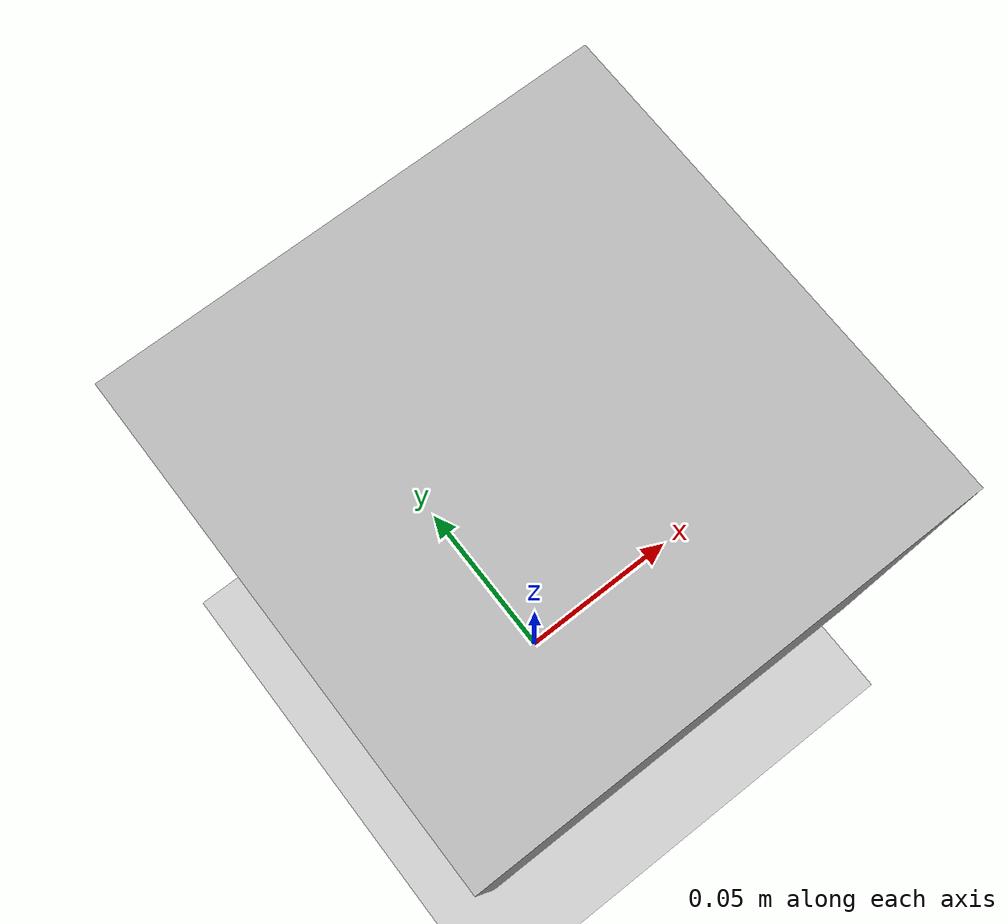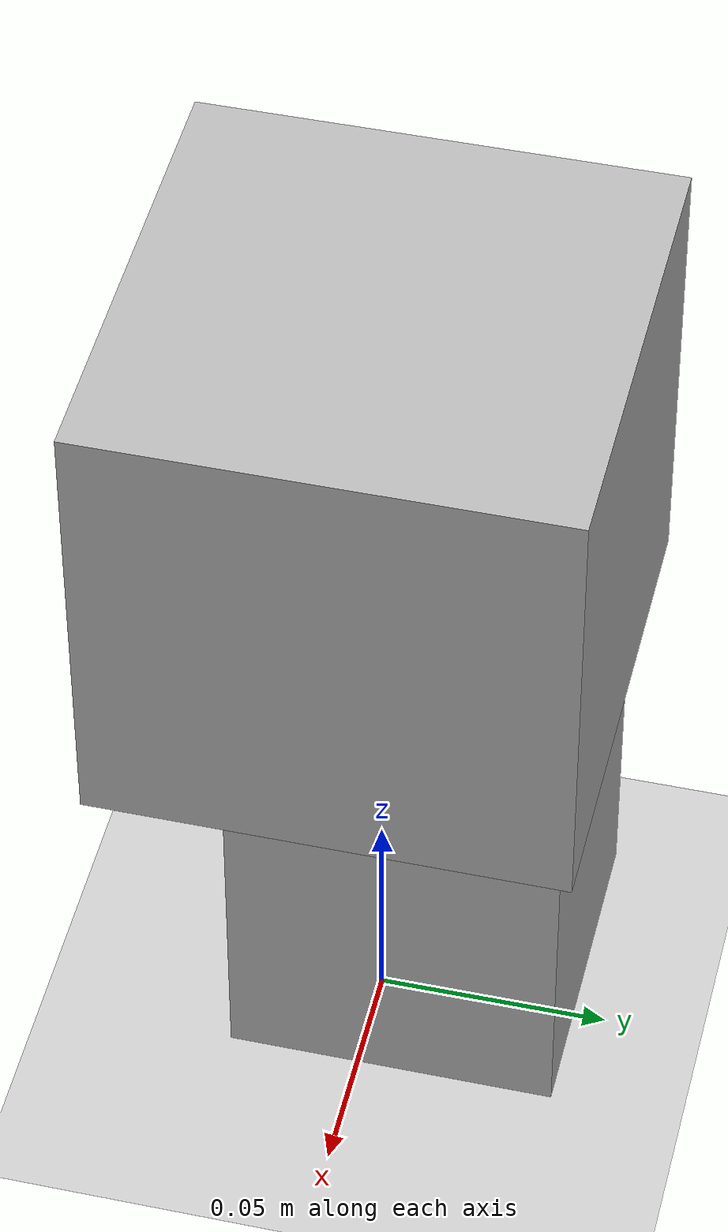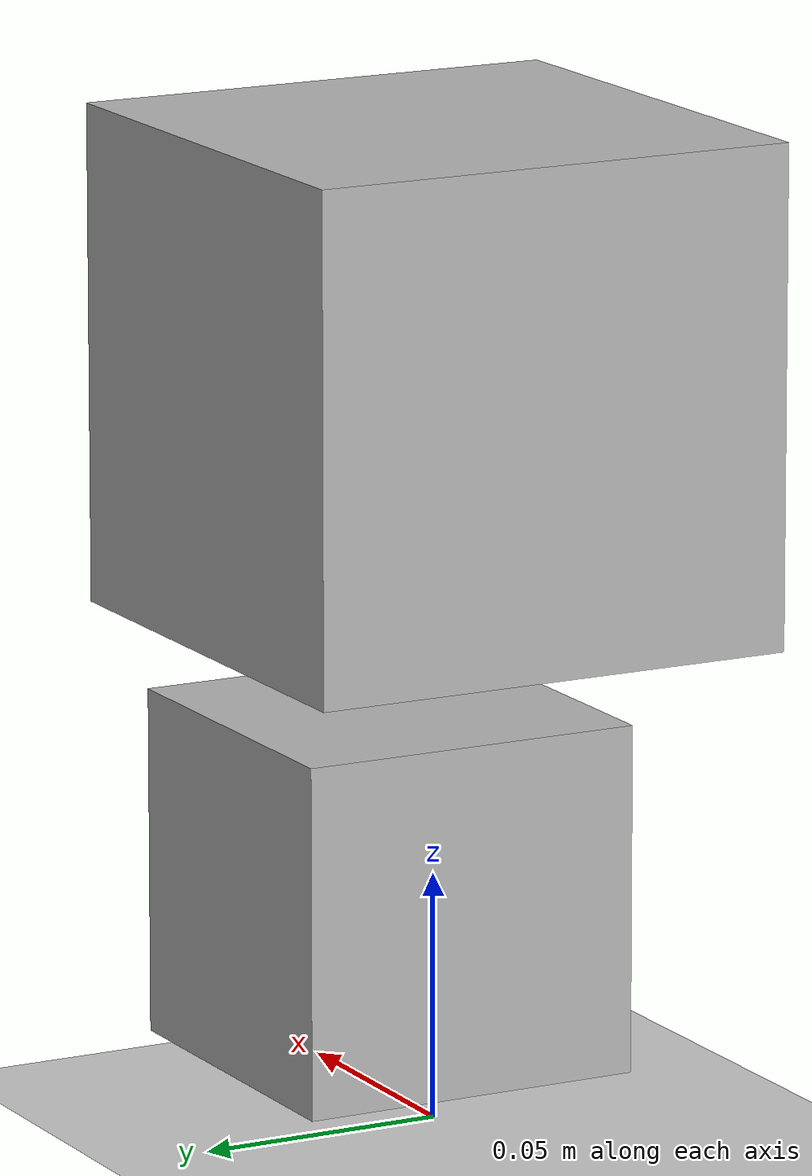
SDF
<?xml version='1.0' ?>
<sdf version='1.11'>
  <world name="default">
  <physics type="ode">
    <max_step_size>0.001</max_step_size>
    <real_time_factor>1</real_time_factor>
    <real_time_update_rate>1000</real_time_update_rate>
  </physics>
    <include>
      <uri>
        https://fuel.gazebosim.org/1.0/OpenRobotics/models/Ground Plane
    </uri>
  </include>
  <model name="vacuum">
    <pose>0 0 0.15 0 0 0</pose>
    <static>true</static>
    <link name="link">
      <inertial>
        <mass>1.0</mass>
        <inertia> <!-- inertias are tricky to compute -->
          <!-- http://gazebosim.org/tutorials?tut=inertia&cat=build_robot -->
          <ixx>0.083</ixx>       <!-- for a box: ixx = 0.083 * mass * (y*y + z*z) -->
          <ixy>0.0</ixy>         <!-- for a box: ixy = 0 -->
          <ixz>0.0</ixz>         <!-- for a box: ixz = 0 -->
          <iyy>0.083</iyy>       <!-- for a box: iyy = 0.083 * mass * (x*x + z*z) -->
          <iyz>0.0</iyz>         <!-- for a box: iyz = 0 -->
          <izz>0.083</izz>       <!-- for a box: izz = 0.083 * mass * (x*x + y*y) -->
        </inertia>
      </inertial>
      <collision name="collision">
        <geometry>
          <box>
            <size>0.1 0.1 0.1</size>
          </box>
        </geometry>
      </collision>
      <visual name="visual">
        <geometry>
          <box>
            <size>0.1 0.1 0.1</size>
          </box>
        </geometry>
      </visual>
    </link>
    <plugin name="VacuumGripperPlugin" filename="VacuumGripperPlugin">
      <robotNamespace></robotNamespace>
      <enableTopic>vacuum_enable</enableTopic>
      <graspingTopic>vacum_attached</graspingTopic>
      <forceScaling>1.0</forceScaling>
      <maxForce>100.0</maxForce>
      <maxDistance>0.5</maxDistance>
    </plugin>
  </model>
  <model name="block">
    <pose>0 0.01 0.05 0 0 0</pose>
    <link name="link">
      <inertial>
        <mass>1.0</mass>
        <inertia> <!-- inertias are tricky to compute -->
          <!-- http://gazebosim.org/tutorials?tut=inertia&cat=build_robot -->
          <ixx>0.083</ixx>       <!-- for a box: ixx = 0.083 * mass * (y*y + z*z) -->
          <ixy>0.0</ixy>         <!-- for a box: ixy = 0 -->
          <ixz>0.0</ixz>         <!-- for a box: ixz = 0 -->
          <iyy>0.083</iyy>       <!-- for a box: iyy = 0.083 * mass * (x*x + z*z) -->
          <iyz>0.0</iyz>         <!-- for a box: iyz = 0 -->
          <izz>0.083</izz>       <!-- for a box: izz = 0.083 * mass * (x*x + y*y) -->
        </inertia>
      </inertial>
      <collision name="collision">
        <geometry>
          <box>
            <size>0.07 0.07 0.07</size>
          </box>
        </geometry>
      </collision>
      <visual name="visual">
        <geometry>
          <box>
            <size>0.07 0.07 0.07</size>
          </box>
        </geometry>
      </visual>
    </link>
  </model>
  </world>
</sdf>
